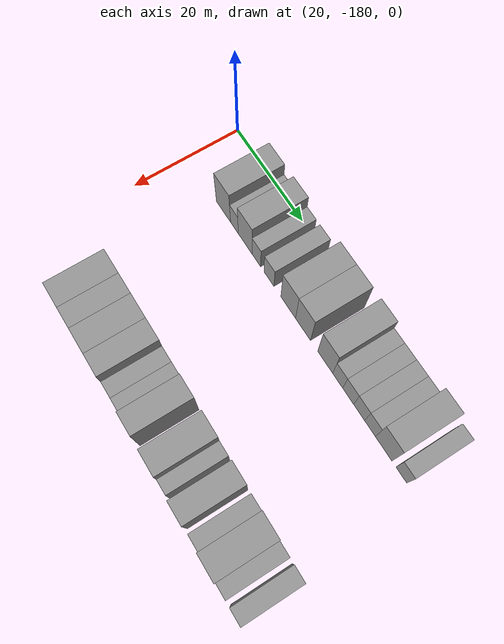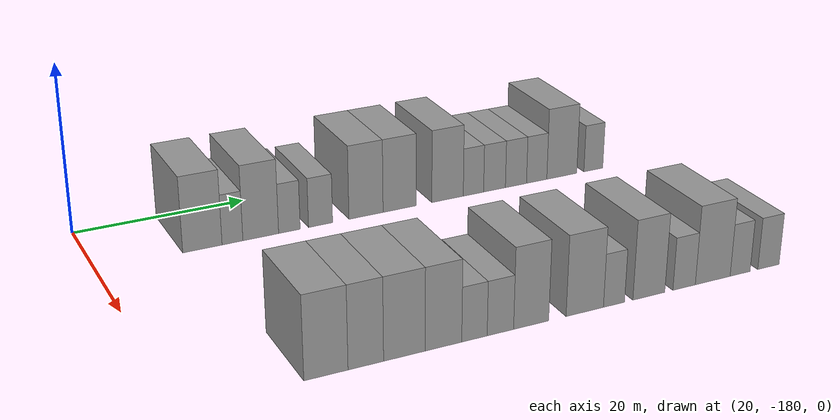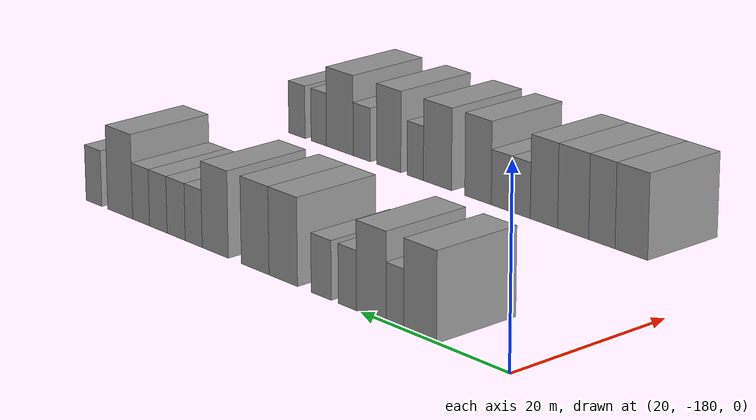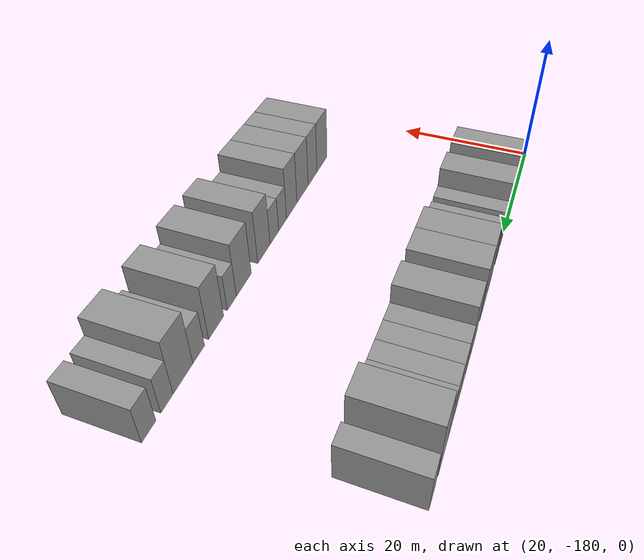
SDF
<sdf version="1.6">
 <world name="default">
  <model name="building_15">
   <static>1</static>
   <pose>25.0000 -168.1947 0 0.000000 0.000000 0.000000</pose>
   <link name="link">
    <pose>0 0 4.50 0 0 0</pose>
    <collision name="collision"><geometry><box><size>10.0000 4.4631 9.0000</size></box></geometry></collision>
    <visual name="visual">
     <cast_shadows>0</cast_shadows>
     <geometry><box><size>10.0000 4.4631 9.0000</size></box></geometry>
     <material>
      <script>
       <uri>model://grey_wall/materials/scripts</uri>
       <uri>model://grey_wall/materials/textures</uri>
       <name>vrc/grey_wall</name>
      </script>
     </material>
    </visual>
   </link>
  </model>
  <model name="building_16">
   <static>1</static>
   <pose>25.0000 -164.7616 0 0.000000 0.000000 0.000000</pose>
   <link name="link">
    <pose>0 0 3.00 0 0 0</pose>
    <collision name="collision"><geometry><box><size>10.0000 2.4031 6.0000</size></box></geometry></collision>
    <visual name="visual">
     <cast_shadows>0</cast_shadows>
     <geometry><box><size>10.0000 2.4031 6.0000</size></box></geometry>
     <material>
      <script>
       <uri>model://grey_wall/materials/scripts</uri>
       <uri>model://grey_wall/materials/textures</uri>
       <name>vrc/grey_wall</name>
      </script>
     </material>
    </visual>
   </link>
  </model>
  <model name="building_17">
   <static>1</static>
   <pose>25.0000 -161.4682 0 0.000000 0.000000 0.000000</pose>
   <link name="link">
    <pose>0 0 4.50 0 0 0</pose>
    <collision name="collision"><geometry><box><size>10.0000 4.1837 9.0000</size></box></geometry></collision>
    <visual name="visual">
     <cast_shadows>0</cast_shadows>
     <geometry><box><size>10.0000 4.1837 9.0000</size></box></geometry>
     <material>
      <script>
       <uri>model://grey_wall/materials/scripts</uri>
       <uri>model://grey_wall/materials/textures</uri>
       <name>vrc/grey_wall</name>
      </script>
     </material>
    </visual>
   </link>
  </model>
  <model name="building_18">
   <static>1</static>
   <pose>25.0000 -158.0925 0 0.000000 0.000000 0.000000</pose>
   <link name="link">
    <pose>0 0 3.00 0 0 0</pose>
    <collision name="collision"><geometry><box><size>10.0000 2.5677 6.0000</size></box></geometry></collision>
    <visual name="visual">
     <cast_shadows>0</cast_shadows>
     <geometry><box><size>10.0000 2.5677 6.0000</size></box></geometry>
     <material>
      <script>
       <uri>model://grey_wall/materials/scripts</uri>
       <uri>model://grey_wall/materials/textures</uri>
       <name>vrc/grey_wall</name>
      </script>
     </material>
    </visual>
   </link>
  </model>
  <model name="building_19">
   <static>1</static>
   <pose>25.0000 -154.3482 0 0.000000 0.000000 0.000000</pose>
   <link name="link">
    <pose>0 0 3.00 0 0 0</pose>
    <collision name="collision"><geometry><box><size>10.0000 2.9210 6.0000</size></box></geometry></collision>
    <visual name="visual">
     <cast_shadows>0</cast_shadows>
     <geometry><box><size>10.0000 2.9210 6.0000</size></box></geometry>
     <material>
      <script>
       <uri>model://grey_wall/materials/scripts</uri>
       <uri>model://grey_wall/materials/textures</uri>
       <name>vrc/grey_wall</name>
      </script>
     </material>
    </visual>
   </link>
  </model>
  <model name="building_20">
   <static>1</static>
   <pose>25.0000 -148.7651 0 0.000000 0.000000 0.000000</pose>
   <link name="link">
    <pose>0 0 4.50 0 0 0</pose>
    <collision name="collision"><geometry><box><size>10.0000 4.2451 9.0000</size></box></geometry></collision>
    <visual name="visual">
     <cast_shadows>0</cast_shadows>
     <geometry><box><size>10.0000 4.2451 9.0000</size></box></geometry>
     <material>
      <script>
       <uri>model://grey_wall/materials/scripts</uri>
       <uri>model://grey_wall/materials/textures</uri>
       <name>vrc/grey_wall</name>
      </script>
     </material>
    </visual>
   </link>
  </model>
  <model name="building_21">
   <static>1</static>
   <pose>25.0000 -144.5374 0 0.000000 0.000000 0.000000</pose>
   <link name="link">
    <pose>0 0 4.50 0 0 0</pose>
    <collision name="collision"><geometry><box><size>10.0000 4.2104 9.0000</size></box></geometry></collision>
    <visual name="visual">
     <cast_shadows>0</cast_shadows>
     <geometry><box><size>10.0000 4.2104 9.0000</size></box></geometry>
     <material>
      <script>
       <uri>model://grey_wall/materials/scripts</uri>
       <uri>model://grey_wall/materials/textures</uri>
       <name>vrc/grey_wall</name>
      </script>
     </material>
    </visual>
   </link>
  </model>
  <model name="building_22">
   <static>1</static>
   <pose>25.0000 -138.3827 0 0.000000 0.000000 0.000000</pose>
   <link name="link">
    <pose>0 0 4.50 0 0 0</pose>
    <collision name="collision"><geometry><box><size>10.0000 4.0988 9.0000</size></box></geometry></collision>
    <visual name="visual">
     <cast_shadows>0</cast_shadows>
     <geometry><box><size>10.0000 4.0988 9.0000</size></box></geometry>
     <material>
      <script>
       <uri>model://grey_wall/materials/scripts</uri>
       <uri>model://grey_wall/materials/textures</uri>
       <name>vrc/grey_wall</name>
      </script>
     </material>
    </visual>
   </link>
  </model>
  <model name="building_23">
   <static>1</static>
   <pose>25.0000 -134.9869 0 0.000000 0.000000 0.000000</pose>
   <link name="link">
    <pose>0 0 3.00 0 0 0</pose>
    <collision name="collision"><geometry><box><size>10.0000 2.6928 6.0000</size></box></geometry></collision>
    <visual name="visual">
     <cast_shadows>0</cast_shadows>
     <geometry><box><size>10.0000 2.6928 6.0000</size></box></geometry>
     <material>
      <script>
       <uri>model://grey_wall/materials/scripts</uri>
       <uri>model://grey_wall/materials/textures</uri>
       <name>vrc/grey_wall</name>
      </script>
     </material>
    </visual>
   </link>
  </model>
  <model name="building_24">
   <static>1</static>
   <pose>25.0000 -132.1823 0 0.000000 0.000000 0.000000</pose>
   <link name="link">
    <pose>0 0 3.00 0 0 0</pose>
    <collision name="collision"><geometry><box><size>10.0000 2.9164 6.0000</size></box></geometry></collision>
    <visual name="visual">
     <cast_shadows>0</cast_shadows>
     <geometry><box><size>10.0000 2.9164 6.0000</size></box></geometry>
     <material>
      <script>
       <uri>model://grey_wall/materials/scripts</uri>
       <uri>model://grey_wall/materials/textures</uri>
       <name>vrc/grey_wall</name>
      </script>
     </material>
    </visual>
   </link>
  </model>
  <model name="building_25">
   <static>1</static>
   <pose>25.0000 -129.2914 0 0.000000 0.000000 0.000000</pose>
   <link name="link">
    <pose>0 0 3.00 0 0 0</pose>
    <collision name="collision"><geometry><box><size>10.0000 2.8655 6.0000</size></box></geometry></collision>
    <visual name="visual">
     <cast_shadows>0</cast_shadows>
     <geometry><box><size>10.0000 2.8655 6.0000</size></box></geometry>
     <material>
      <script>
       <uri>model://grey_wall/materials/scripts</uri>
       <uri>model://grey_wall/materials/textures</uri>
       <name>vrc/grey_wall</name>
      </script>
     </material>
    </visual>
   </link>
  </model>
  <model name="building_26">
   <static>1</static>
   <pose>25.0000 -126.4624 0 0.000000 0.000000 0.000000</pose>
   <link name="link">
    <pose>0 0 3.00 0 0 0</pose>
    <collision name="collision"><geometry><box><size>10.0000 2.7925 6.0000</size></box></geometry></collision>
    <visual name="visual">
     <cast_shadows>0</cast_shadows>
     <geometry><box><size>10.0000 2.7925 6.0000</size></box></geometry>
     <material>
      <script>
       <uri>model://grey_wall/materials/scripts</uri>
       <uri>model://grey_wall/materials/textures</uri>
       <name>vrc/grey_wall</name>
      </script>
     </material>
    </visual>
   </link>
  </model>
  <model name="building_27">
   <static>1</static>
   <pose>25.0000 -122.9737 0 0.000000 0.000000 0.000000</pose>
   <link name="link">
    <pose>0 0 4.50 0 0 0</pose>
    <collision name="collision"><geometry><box><size>10.0000 4.1849 9.0000</size></box></geometry></collision>
    <visual name="visual">
     <cast_shadows>0</cast_shadows>
     <geometry><box><size>10.0000 4.1849 9.0000</size></box></geometry>
     <material>
      <script>
       <uri>model://grey_wall/materials/scripts</uri>
       <uri>model://grey_wall/materials/textures</uri>
       <name>vrc/grey_wall</name>
      </script>
     </material>
    </visual>
   </link>
  </model>
  <model name="building_28">
   <static>1</static>
   <pose>25.0000 -118.5376 0 0.000000 0.000000 0.000000</pose>
   <link name="link">
    <pose>0 0 3.00 0 0 0</pose>
    <collision name="collision"><geometry><box><size>10.0000 2.6874 6.0000</size></box></geometry></collision>
    <visual name="visual">
     <cast_shadows>0</cast_shadows>
     <geometry><box><size>10.0000 2.6874 6.0000</size></box></geometry>
     <material>
      <script>
       <uri>model://grey_wall/materials/scripts</uri>
       <uri>model://grey_wall/materials/textures</uri>
       <name>vrc/grey_wall</name>
      </script>
     </material>
    </visual>
   </link>
  </model>
  <model name="building_132">
   <static>1</static>
   <pose>55.0000 -166.0192 0 0.000000 0.000000 0.000000</pose>
   <link name="link">
    <pose>0 0 4.50 0 0 0</pose>
    <collision name="collision"><geometry><box><size>10.0000 4.4368 9.0000</size></box></geometry></collision>
    <visual name="visual">
     <cast_shadows>0</cast_shadows>
     <geometry><box><size>10.0000 4.4368 9.0000</size></box></geometry>
     <material>
      <script>
       <uri>model://grey_wall/materials/scripts</uri>
       <uri>model://grey_wall/materials/textures</uri>
       <name>vrc/grey_wall</name>
      </script>
     </material>
    </visual>
   </link>
  </model>
  <model name="building_133">
   <static>1</static>
   <pose>55.0000 -161.9777 0 0.000000 0.000000 0.000000</pose>
   <link name="link">
    <pose>0 0 4.50 0 0 0</pose>
    <collision name="collision"><geometry><box><size>10.0000 3.6463 9.0000</size></box></geometry></collision>
    <visual name="visual">
     <cast_shadows>0</cast_shadows>
     <geometry><box><size>10.0000 3.6463 9.0000</size></box></geometry>
     <material>
      <script>
       <uri>model://grey_wall/materials/scripts</uri>
       <uri>model://grey_wall/materials/textures</uri>
       <name>vrc/grey_wall</name>
      </script>
     </material>
    </visual>
   </link>
  </model>
  <model name="building_134">
   <static>1</static>
   <pose>55.0000 -157.9676 0 0.000000 0.000000 0.000000</pose>
   <link name="link">
    <pose>0 0 4.50 0 0 0</pose>
    <collision name="collision"><geometry><box><size>10.0000 4.3739 9.0000</size></box></geometry></collision>
    <visual name="visual">
     <cast_shadows>0</cast_shadows>
     <geometry><box><size>10.0000 4.3739 9.0000</size></box></geometry>
     <material>
      <script>
       <uri>model://grey_wall/materials/scripts</uri>
       <uri>model://grey_wall/materials/textures</uri>
       <name>vrc/grey_wall</name>
      </script>
     </material>
    </visual>
   </link>
  </model>
  <model name="building_135">
   <static>1</static>
   <pose>55.0000 -153.8254 0 0.000000 0.000000 0.000000</pose>
   <link name="link">
    <pose>0 0 4.50 0 0 0</pose>
    <collision name="collision"><geometry><box><size>10.0000 3.9104 9.0000</size></box></geometry></collision>
    <visual name="visual">
     <cast_shadows>0</cast_shadows>
     <geometry><box><size>10.0000 3.9104 9.0000</size></box></geometry>
     <material>
      <script>
       <uri>model://grey_wall/materials/scripts</uri>
       <uri>model://grey_wall/materials/textures</uri>
       <name>vrc/grey_wall</name>
      </script>
     </material>
    </visual>
   </link>
  </model>
  <model name="building_136">
   <static>1</static>
   <pose>55.0000 -150.4816 0 0.000000 0.000000 0.000000</pose>
   <link name="link">
    <pose>0 0 3.00 0 0 0</pose>
    <collision name="collision"><geometry><box><size>10.0000 2.7772 6.0000</size></box></geometry></collision>
    <visual name="visual">
     <cast_shadows>0</cast_shadows>
     <geometry><box><size>10.0000 2.7772 6.0000</size></box></geometry>
     <material>
      <script>
       <uri>model://grey_wall/materials/scripts</uri>
       <uri>model://grey_wall/materials/textures</uri>
       <name>vrc/grey_wall</name>
      </script>
     </material>
    </visual>
   </link>
  </model>
  <model name="building_137">
   <static>1</static>
   <pose>55.0000 -147.6261 0 0.000000 0.000000 0.000000</pose>
   <link name="link">
    <pose>0 0 3.00 0 0 0</pose>
    <collision name="collision"><geometry><box><size>10.0000 2.9338 6.0000</size></box></geometry></collision>
    <visual name="visual">
     <cast_shadows>0</cast_shadows>
     <geometry><box><size>10.0000 2.9338 6.0000</size></box></geometry>
     <material>
      <script>
       <uri>model://grey_wall/materials/scripts</uri>
       <uri>model://grey_wall/materials/textures</uri>
       <name>vrc/grey_wall</name>
      </script>
     </material>
    </visual>
   </link>
  </model>
  <model name="building_138">
   <static>1</static>
   <pose>55.0000 -144.1766 0 0.000000 0.000000 0.000000</pose>
   <link name="link">
    <pose>0 0 4.50 0 0 0</pose>
    <collision name="collision"><geometry><box><size>10.0000 3.9651 9.0000</size></box></geometry></collision>
    <visual name="visual">
     <cast_shadows>0</cast_shadows>
     <geometry><box><size>10.0000 3.9651 9.0000</size></box></geometry>
     <material>
      <script>
       <uri>model://grey_wall/materials/scripts</uri>
       <uri>model://grey_wall/materials/textures</uri>
       <name>vrc/grey_wall</name>
      </script>
     </material>
    </visual>
   </link>
  </model>
  <model name="building_139">
   <static>1</static>
   <pose>55.0000 -138.0146 0 0.000000 0.000000 0.000000</pose>
   <link name="link">
    <pose>0 0 4.50 0 0 0</pose>
    <collision name="collision"><geometry><box><size>10.0000 4.3588 9.0000</size></box></geometry></collision>
    <visual name="visual">
     <cast_shadows>0</cast_shadows>
     <geometry><box><size>10.0000 4.3588 9.0000</size></box></geometry>
     <material>
      <script>
       <uri>model://grey_wall/materials/scripts</uri>
       <uri>model://grey_wall/materials/textures</uri>
       <name>vrc/grey_wall</name>
      </script>
     </material>
    </visual>
   </link>
  </model>
  <model name="building_140">
   <static>1</static>
   <pose>55.0000 -134.5801 0 0.000000 0.000000 0.000000</pose>
   <link name="link">
    <pose>0 0 3.00 0 0 0</pose>
    <collision name="collision"><geometry><box><size>10.0000 2.5104 6.0000</size></box></geometry></collision>
    <visual name="visual">
     <cast_shadows>0</cast_shadows>
     <geometry><box><size>10.0000 2.5104 6.0000</size></box></geometry>
     <material>
      <script>
       <uri>model://grey_wall/materials/scripts</uri>
       <uri>model://grey_wall/materials/textures</uri>
       <name>vrc/grey_wall</name>
      </script>
     </material>
    </visual>
   </link>
  </model>
  <model name="building_141">
   <static>1</static>
   <pose>55.0000 -130.3866 0 0.000000 0.000000 0.000000</pose>
   <link name="link">
    <pose>0 0 4.50 0 0 0</pose>
    <collision name="collision"><geometry><box><size>10.0000 3.8766 9.0000</size></box></geometry></collision>
    <visual name="visual">
     <cast_shadows>0</cast_shadows>
     <geometry><box><size>10.0000 3.8766 9.0000</size></box></geometry>
     <material>
      <script>
       <uri>model://grey_wall/materials/scripts</uri>
       <uri>model://grey_wall/materials/textures</uri>
       <name>vrc/grey_wall</name>
      </script>
     </material>
    </visual>
   </link>
  </model>
  <model name="building_142">
   <static>1</static>
   <pose>55.0000 -126.0562 0 0.000000 0.000000 0.000000</pose>
   <link name="link">
    <pose>0 0 3.00 0 0 0</pose>
    <collision name="collision"><geometry><box><size>10.0000 2.7843 6.0000</size></box></geometry></collision>
    <visual name="visual">
     <cast_shadows>0</cast_shadows>
     <geometry><box><size>10.0000 2.7843 6.0000</size></box></geometry>
     <material>
      <script>
       <uri>model://grey_wall/materials/scripts</uri>
       <uri>model://grey_wall/materials/textures</uri>
       <name>vrc/grey_wall</name>
      </script>
     </material>
    </visual>
   </link>
  </model>
  <model name="building_143">
   <static>1</static>
   <pose>55.0000 -122.4619 0 0.000000 0.000000 0.000000</pose>
   <link name="link">
    <pose>0 0 4.50 0 0 0</pose>
    <collision name="collision"><geometry><box><size>10.0000 4.4042 9.0000</size></box></geometry></collision>
    <visual name="visual">
     <cast_shadows>0</cast_shadows>
     <geometry><box><size>10.0000 4.4042 9.0000</size></box></geometry>
     <material>
      <script>
       <uri>model://grey_wall/materials/scripts</uri>
       <uri>model://grey_wall/materials/textures</uri>
       <name>vrc/grey_wall</name>
      </script>
     </material>
    </visual>
   </link>
  </model>
  <model name="building_144">
   <static>1</static>
   <pose>55.0000 -118.9770 0 0.000000 0.000000 0.000000</pose>
   <link name="link">
    <pose>0 0 3.00 0 0 0</pose>
    <collision name="collision"><geometry><box><size>10.0000 2.5658 6.0000</size></box></geometry></collision>
    <visual name="visual">
     <cast_shadows>0</cast_shadows>
     <geometry><box><size>10.0000 2.5658 6.0000</size></box></geometry>
     <material>
      <script>
       <uri>model://grey_wall/materials/scripts</uri>
       <uri>model://grey_wall/materials/textures</uri>
       <name>vrc/grey_wall</name>
      </script>
     </material>
    </visual>
   </link>
  </model>
  <model name="building_145">
   <static>1</static>
   <pose>55.0000 -115.3022 0 0.000000 0.000000 0.000000</pose>
   <link name="link">
    <pose>0 0 3.00 0 0 0</pose>
    <collision name="collision"><geometry><box><size>10.0000 2.7837 6.0000</size></box></geometry></collision>
    <visual name="visual">
     <cast_shadows>0</cast_shadows>
     <geometry><box><size>10.0000 2.7837 6.0000</size></box></geometry>
     <material>
      <script>
       <uri>model://grey_wall/materials/scripts</uri>
       <uri>model://grey_wall/materials/textures</uri>
       <name>vrc/grey_wall</name>
      </script>
     </material>
    </visual>
   </link>
  </model>
 </world>
</sdf>
